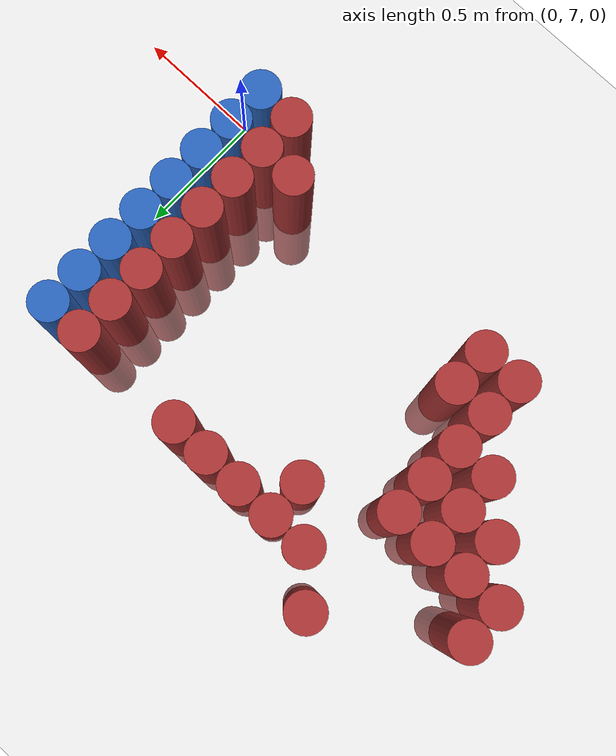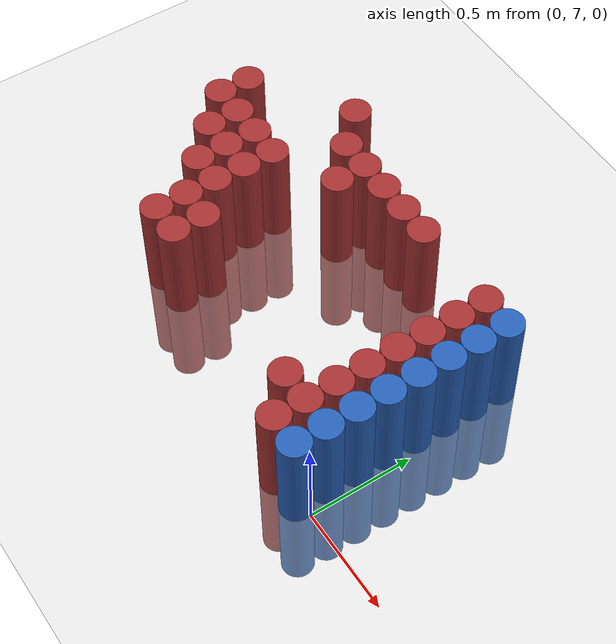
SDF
<sdf version="1.6">
 <world name="default">
  <model name="ground_plane">
   <static>1</static>
   <link name="link">
    <collision name="collision">
     <geometry><plane><normal>0 0 1</normal><size>100 100</size></plane></geometry>
     <surface><friction><ode><mu>100</mu><mu2>50</mu2></ode></friction></surface>
    </collision>
    <visual name="visual">
     <cast_shadows>0</cast_shadows>
     <geometry><plane><normal>0 0 1</normal><size>100 100</size></plane></geometry>
     <material>
      <script><uri>file://media/materials/scripts/gazebo.material</uri><name>Gazebo/Grey</name></script>
     </material>
    </visual>
   </link>
  </model>
  <model name="unit_cylinder_206">
   <static>1</static>
   <pose>-1.875000 7.725000 0.000000 0.000000 0.000000 0.000000</pose>
   <link name="link">
    <inertial>
     <mass>1</mass>
     <inertia><ixx>0.145833</ixx><ixy>0</ixy><ixz>0</ixz><iyy>0.145833</iyy><iyz>0</iyz><izz>0.125</izz></inertia>
    </inertial>
    <collision name="collision">
     <geometry><cylinder><radius>0.075000</radius><length>1</length></cylinder></geometry>
    </collision>
    <visual name="visual">
     <geometry><cylinder><radius>0.075000</radius><length>1</length></cylinder></geometry>
     <material>
      <ambient>0.648000 0.192000 0.192000 1</ambient>
      <diffuse>0.648000 0.192000 0.192000 1</diffuse>
     </material>
     <material>
      <script><name>Gazebo/Grey</name><uri>file://media/materials/scripts/gazebo.material</uri></script>
     </material>
    </visual>
    <sensor name="sensor_contact" type="contact"><contact><collision>collision</collision></contact></sensor>
   </link>
   <plugin filename="gz-sim-touchplugin-system" name="gz::sim::systems::TouchPlugin">
    <target>robot</target>
    <namespace>robot</namespace>
    <time>0.001</time>
    <enabled>true</enabled>
   </plugin>
  </model>
  <model name="unit_cylinder_207">
   <static>1</static>
   <pose>-1.875000 7.875000 0.000000 0.000000 0.000000 0.000000</pose>
   <link name="link">
    <inertial>
     <mass>1</mass>
     <inertia><ixx>0.145833</ixx><ixy>0</ixy><ixz>0</ixz><iyy>0.145833</iyy><iyz>0</iyz><izz>0.125</izz></inertia>
    </inertial>
    <collision name="collision">
     <geometry><cylinder><radius>0.075000</radius><length>1</length></cylinder></geometry>
    </collision>
    <visual name="visual">
     <geometry><cylinder><radius>0.075000</radius><length>1</length></cylinder></geometry>
     <material>
      <ambient>0.648000 0.192000 0.192000 1</ambient>
      <diffuse>0.648000 0.192000 0.192000 1</diffuse>
     </material>
     <material>
      <script><name>Gazebo/Grey</name><uri>file://media/materials/scripts/gazebo.material</uri></script>
     </material>
    </visual>
    <sensor name="sensor_contact" type="contact"><contact><collision>collision</collision></contact></sensor>
   </link>
   <plugin filename="gz-sim-touchplugin-system" name="gz::sim::systems::TouchPlugin">
    <target>robot</target>
    <namespace>robot</namespace>
    <time>0.001</time>
    <enabled>true</enabled>
   </plugin>
  </model>
  <model name="unit_cylinder_214">
   <static>1</static>
   <pose>-1.725000 7.575000 0.000000 0.000000 0.000000 0.000000</pose>
   <link name="link">
    <inertial>
     <mass>1</mass>
     <inertia><ixx>0.145833</ixx><ixy>0</ixy><ixz>0</ixz><iyy>0.145833</iyy><iyz>0</iyz><izz>0.125</izz></inertia>
    </inertial>
    <collision name="collision">
     <geometry><cylinder><radius>0.075000</radius><length>1</length></cylinder></geometry>
    </collision>
    <visual name="visual">
     <geometry><cylinder><radius>0.075000</radius><length>1</length></cylinder></geometry>
     <material>
      <ambient>0.648000 0.192000 0.192000 1</ambient>
      <diffuse>0.648000 0.192000 0.192000 1</diffuse>
     </material>
     <material>
      <script><name>Gazebo/Grey</name><uri>file://media/materials/scripts/gazebo.material</uri></script>
     </material>
    </visual>
    <sensor name="sensor_contact" type="contact"><contact><collision>collision</collision></contact></sensor>
   </link>
   <plugin filename="gz-sim-touchplugin-system" name="gz::sim::systems::TouchPlugin">
    <target>robot</target>
    <namespace>robot</namespace>
    <time>0.001</time>
    <enabled>true</enabled>
   </plugin>
  </model>
  <model name="unit_cylinder_215">
   <static>1</static>
   <pose>-1.725000 7.725000 0.000000 0.000000 0.000000 0.000000</pose>
   <link name="link">
    <inertial>
     <mass>1</mass>
     <inertia><ixx>0.145833</ixx><ixy>0</ixy><ixz>0</ixz><iyy>0.145833</iyy><iyz>0</iyz><izz>0.125</izz></inertia>
    </inertial>
    <collision name="collision">
     <geometry><cylinder><radius>0.075000</radius><length>1</length></cylinder></geometry>
    </collision>
    <visual name="visual">
     <geometry><cylinder><radius>0.075000</radius><length>1</length></cylinder></geometry>
     <material>
      <ambient>0.648000 0.192000 0.192000 1</ambient>
      <diffuse>0.648000 0.192000 0.192000 1</diffuse>
     </material>
     <material>
      <script><name>Gazebo/Grey</name><uri>file://media/materials/scripts/gazebo.material</uri></script>
     </material>
    </visual>
    <sensor name="sensor_contact" type="contact"><contact><collision>collision</collision></contact></sensor>
   </link>
   <plugin filename="gz-sim-touchplugin-system" name="gz::sim::systems::TouchPlugin">
    <target>robot</target>
    <namespace>robot</namespace>
    <time>0.001</time>
    <enabled>true</enabled>
   </plugin>
  </model>
  <model name="unit_cylinder_222">
   <static>1</static>
   <pose>-1.575000 7.425000 0.000000 0.000000 0.000000 0.000000</pose>
   <link name="link">
    <inertial>
     <mass>1</mass>
     <inertia><ixx>0.145833</ixx><ixy>0</ixy><ixz>0</ixz><iyy>0.145833</iyy><iyz>0</iyz><izz>0.125</izz></inertia>
    </inertial>
    <collision name="collision">
     <geometry><cylinder><radius>0.075000</radius><length>1</length></cylinder></geometry>
    </collision>
    <visual name="visual">
     <geometry><cylinder><radius>0.075000</radius><length>1</length></cylinder></geometry>
     <material>
      <ambient>0.648000 0.192000 0.192000 1</ambient>
      <diffuse>0.648000 0.192000 0.192000 1</diffuse>
     </material>
     <material>
      <script><name>Gazebo/Grey</name><uri>file://media/materials/scripts/gazebo.material</uri></script>
     </material>
    </visual>
    <sensor name="sensor_contact" type="contact"><contact><collision>collision</collision></contact></sensor>
   </link>
   <plugin filename="gz-sim-touchplugin-system" name="gz::sim::systems::TouchPlugin">
    <target>robot</target>
    <namespace>robot</namespace>
    <time>0.001</time>
    <enabled>true</enabled>
   </plugin>
  </model>
  <model name="unit_cylinder_223">
   <static>1</static>
   <pose>-1.575000 7.575000 0.000000 0.000000 0.000000 0.000000</pose>
   <link name="link">
    <inertial>
     <mass>1</mass>
     <inertia><ixx>0.145833</ixx><ixy>0</ixy><ixz>0</ixz><iyy>0.145833</iyy><iyz>0</iyz><izz>0.125</izz></inertia>
    </inertial>
    <collision name="collision">
     <geometry><cylinder><radius>0.075000</radius><length>1</length></cylinder></geometry>
    </collision>
    <visual name="visual">
     <geometry><cylinder><radius>0.075000</radius><length>1</length></cylinder></geometry>
     <material>
      <ambient>0.648000 0.192000 0.192000 1</ambient>
      <diffuse>0.648000 0.192000 0.192000 1</diffuse>
     </material>
     <material>
      <script><name>Gazebo/Grey</name><uri>file://media/materials/scripts/gazebo.material</uri></script>
     </material>
    </visual>
    <sensor name="sensor_contact" type="contact"><contact><collision>collision</collision></contact></sensor>
   </link>
   <plugin filename="gz-sim-touchplugin-system" name="gz::sim::systems::TouchPlugin">
    <target>robot</target>
    <namespace>robot</namespace>
    <time>0.001</time>
    <enabled>true</enabled>
   </plugin>
  </model>
  <model name="unit_cylinder_224">
   <static>1</static>
   <pose>-1.575000 7.725000 0.000000 0.000000 0.000000 0.000000</pose>
   <link name="link">
    <inertial>
     <mass>1</mass>
     <inertia><ixx>0.145833</ixx><ixy>0</ixy><ixz>0</ixz><iyy>0.145833</iyy><iyz>0</iyz><izz>0.125</izz></inertia>
    </inertial>
    <collision name="collision">
     <geometry><cylinder><radius>0.075000</radius><length>1</length></cylinder></geometry>
    </collision>
    <visual name="visual">
     <geometry><cylinder><radius>0.075000</radius><length>1</length></cylinder></geometry>
     <material>
      <ambient>0.648000 0.192000 0.192000 1</ambient>
      <diffuse>0.648000 0.192000 0.192000 1</diffuse>
     </material>
     <material>
      <script><name>Gazebo/Grey</name><uri>file://media/materials/scripts/gazebo.material</uri></script>
     </material>
    </visual>
    <sensor name="sensor_contact" type="contact"><contact><collision>collision</collision></contact></sensor>
   </link>
   <plugin filename="gz-sim-touchplugin-system" name="gz::sim::systems::TouchPlugin">
    <target>robot</target>
    <namespace>robot</namespace>
    <time>0.001</time>
    <enabled>true</enabled>
   </plugin>
  </model>
  <model name="unit_cylinder_232">
   <static>1</static>
   <pose>-1.425000 7.125000 0.000000 0.000000 0.000000 0.000000</pose>
   <link name="link">
    <inertial>
     <mass>1</mass>
     <inertia><ixx>0.145833</ixx><ixy>0</ixy><ixz>0</ixz><iyy>0.145833</iyy><iyz>0</iyz><izz>0.125</izz></inertia>
    </inertial>
    <collision name="collision">
     <geometry><cylinder><radius>0.075000</radius><length>1</length></cylinder></geometry>
    </collision>
    <visual name="visual">
     <geometry><cylinder><radius>0.075000</radius><length>1</length></cylinder></geometry>
     <material>
      <ambient>0.648000 0.192000 0.192000 1</ambient>
      <diffuse>0.648000 0.192000 0.192000 1</diffuse>
     </material>
     <material>
      <script><name>Gazebo/Grey</name><uri>file://media/materials/scripts/gazebo.material</uri></script>
     </material>
    </visual>
    <sensor name="sensor_contact" type="contact"><contact><collision>collision</collision></contact></sensor>
   </link>
   <plugin filename="gz-sim-touchplugin-system" name="gz::sim::systems::TouchPlugin">
    <target>robot</target>
    <namespace>robot</namespace>
    <time>0.001</time>
    <enabled>true</enabled>
   </plugin>
  </model>
  <model name="unit_cylinder_233">
   <static>1</static>
   <pose>-1.425000 7.275000 0.000000 0.000000 0.000000 0.000000</pose>
   <link name="link">
    <inertial>
     <mass>1</mass>
     <inertia><ixx>0.145833</ixx><ixy>0</ixy><ixz>0</ixz><iyy>0.145833</iyy><iyz>0</iyz><izz>0.125</izz></inertia>
    </inertial>
    <collision name="collision">
     <geometry><cylinder><radius>0.075000</radius><length>1</length></cylinder></geometry>
    </collision>
    <visual name="visual">
     <geometry><cylinder><radius>0.075000</radius><length>1</length></cylinder></geometry>
     <material>
      <ambient>0.648000 0.192000 0.192000 1</ambient>
      <diffuse>0.648000 0.192000 0.192000 1</diffuse>
     </material>
     <material>
      <script><name>Gazebo/Grey</name><uri>file://media/materials/scripts/gazebo.material</uri></script>
     </material>
    </visual>
    <sensor name="sensor_contact" type="contact"><contact><collision>collision</collision></contact></sensor>
   </link>
   <plugin filename="gz-sim-touchplugin-system" name="gz::sim::systems::TouchPlugin">
    <target>robot</target>
    <namespace>robot</namespace>
    <time>0.001</time>
    <enabled>true</enabled>
   </plugin>
  </model>
  <model name="unit_cylinder_234">
   <static>1</static>
   <pose>-1.425000 7.425000 0.000000 0.000000 0.000000 0.000000</pose>
   <link name="link">
    <inertial>
     <mass>1</mass>
     <inertia><ixx>0.145833</ixx><ixy>0</ixy><ixz>0</ixz><iyy>0.145833</iyy><iyz>0</iyz><izz>0.125</izz></inertia>
    </inertial>
    <collision name="collision">
     <geometry><cylinder><radius>0.075000</radius><length>1</length></cylinder></geometry>
    </collision>
    <visual name="visual">
     <geometry><cylinder><radius>0.075000</radius><length>1</length></cylinder></geometry>
     <material>
      <ambient>0.648000 0.192000 0.192000 1</ambient>
      <diffuse>0.648000 0.192000 0.192000 1</diffuse>
     </material>
     <material>
      <script><name>Gazebo/Grey</name><uri>file://media/materials/scripts/gazebo.material</uri></script>
     </material>
    </visual>
    <sensor name="sensor_contact" type="contact"><contact><collision>collision</collision></contact></sensor>
   </link>
   <plugin filename="gz-sim-touchplugin-system" name="gz::sim::systems::TouchPlugin">
    <target>robot</target>
    <namespace>robot</namespace>
    <time>0.001</time>
    <enabled>true</enabled>
   </plugin>
  </model>
  <model name="unit_cylinder_235">
   <static>1</static>
   <pose>-1.425000 7.575000 0.000000 0.000000 0.000000 0.000000</pose>
   <link name="link">
    <inertial>
     <mass>1</mass>
     <inertia><ixx>0.145833</ixx><ixy>0</ixy><ixz>0</ixz><iyy>0.145833</iyy><iyz>0</iyz><izz>0.125</izz></inertia>
    </inertial>
    <collision name="collision">
     <geometry><cylinder><radius>0.075000</radius><length>1</length></cylinder></geometry>
    </collision>
    <visual name="visual">
     <geometry><cylinder><radius>0.075000</radius><length>1</length></cylinder></geometry>
     <material>
      <ambient>0.648000 0.192000 0.192000 1</ambient>
      <diffuse>0.648000 0.192000 0.192000 1</diffuse>
     </material>
     <material>
      <script><name>Gazebo/Grey</name><uri>file://media/materials/scripts/gazebo.material</uri></script>
     </material>
    </visual>
    <sensor name="sensor_contact" type="contact"><contact><collision>collision</collision></contact></sensor>
   </link>
   <plugin filename="gz-sim-touchplugin-system" name="gz::sim::systems::TouchPlugin">
    <target>robot</target>
    <namespace>robot</namespace>
    <time>0.001</time>
    <enabled>true</enabled>
   </plugin>
  </model>
  <model name="unit_cylinder_236">
   <static>1</static>
   <pose>-1.425000 7.725000 0.000000 0.000000 0.000000 0.000000</pose>
   <link name="link">
    <inertial>
     <mass>1</mass>
     <inertia><ixx>0.145833</ixx><ixy>0</ixy><ixz>0</ixz><iyy>0.145833</iyy><iyz>0</iyz><izz>0.125</izz></inertia>
    </inertial>
    <collision name="collision">
     <geometry><cylinder><radius>0.075000</radius><length>1</length></cylinder></geometry>
    </collision>
    <visual name="visual">
     <geometry><cylinder><radius>0.075000</radius><length>1</length></cylinder></geometry>
     <material>
      <ambient>0.648000 0.192000 0.192000 1</ambient>
      <diffuse>0.648000 0.192000 0.192000 1</diffuse>
     </material>
     <material>
      <script><name>Gazebo/Grey</name><uri>file://media/materials/scripts/gazebo.material</uri></script>
     </material>
    </visual>
    <sensor name="sensor_contact" type="contact"><contact><collision>collision</collision></contact></sensor>
   </link>
   <plugin filename="gz-sim-touchplugin-system" name="gz::sim::systems::TouchPlugin">
    <target>robot</target>
    <namespace>robot</namespace>
    <time>0.001</time>
    <enabled>true</enabled>
   </plugin>
  </model>
  <model name="unit_cylinder_237">
   <static>1</static>
   <pose>-1.425000 8.175000 0.000000 0.000000 0.000000 0.000000</pose>
   <link name="link">
    <inertial>
     <mass>1</mass>
     <inertia><ixx>0.145833</ixx><ixy>0</ixy><ixz>0</ixz><iyy>0.145833</iyy><iyz>0</iyz><izz>0.125</izz></inertia>
    </inertial>
    <collision name="collision">
     <geometry><cylinder><radius>0.075000</radius><length>1</length></cylinder></geometry>
    </collision>
    <visual name="visual">
     <geometry><cylinder><radius>0.075000</radius><length>1</length></cylinder></geometry>
     <material>
      <ambient>0.648000 0.192000 0.192000 1</ambient>
      <diffuse>0.648000 0.192000 0.192000 1</diffuse>
     </material>
     <material>
      <script><name>Gazebo/Grey</name><uri>file://media/materials/scripts/gazebo.material</uri></script>
     </material>
    </visual>
    <sensor name="sensor_contact" type="contact"><contact><collision>collision</collision></contact></sensor>
   </link>
   <plugin filename="gz-sim-touchplugin-system" name="gz::sim::systems::TouchPlugin">
    <target>robot</target>
    <namespace>robot</namespace>
    <time>0.001</time>
    <enabled>true</enabled>
   </plugin>
  </model>
  <model name="unit_cylinder_251">
   <static>1</static>
   <pose>-1.275000 7.125000 0.000000 0.000000 0.000000 0.000000</pose>
   <link name="link">
    <inertial>
     <mass>1</mass>
     <inertia><ixx>0.145833</ixx><ixy>0</ixy><ixz>0</ixz><iyy>0.145833</iyy><iyz>0</iyz><izz>0.125</izz></inertia>
    </inertial>
    <collision name="collision">
     <geometry><cylinder><radius>0.075000</radius><length>1</length></cylinder></geometry>
    </collision>
    <visual name="visual">
     <geometry><cylinder><radius>0.075000</radius><length>1</length></cylinder></geometry>
     <material>
      <ambient>0.648000 0.192000 0.192000 1</ambient>
      <diffuse>0.648000 0.192000 0.192000 1</diffuse>
     </material>
     <material>
      <script><name>Gazebo/Grey</name><uri>file://media/materials/scripts/gazebo.material</uri></script>
     </material>
    </visual>
    <sensor name="sensor_contact" type="contact"><contact><collision>collision</collision></contact></sensor>
   </link>
   <plugin filename="gz-sim-touchplugin-system" name="gz::sim::systems::TouchPlugin">
    <target>robot</target>
    <namespace>robot</namespace>
    <time>0.001</time>
    <enabled>true</enabled>
   </plugin>
  </model>
  <model name="unit_cylinder_252">
   <static>1</static>
   <pose>-1.275000 7.275000 0.000000 0.000000 0.000000 0.000000</pose>
   <link name="link">
    <inertial>
     <mass>1</mass>
     <inertia><ixx>0.145833</ixx><ixy>0</ixy><ixz>0</ixz><iyy>0.145833</iyy><iyz>0</iyz><izz>0.125</izz></inertia>
    </inertial>
    <collision name="collision">
     <geometry><cylinder><radius>0.075000</radius><length>1</length></cylinder></geometry>
    </collision>
    <visual name="visual">
     <geometry><cylinder><radius>0.075000</radius><length>1</length></cylinder></geometry>
     <material>
      <ambient>0.648000 0.192000 0.192000 1</ambient>
      <diffuse>0.648000 0.192000 0.192000 1</diffuse>
     </material>
     <material>
      <script><name>Gazebo/Grey</name><uri>file://media/materials/scripts/gazebo.material</uri></script>
     </material>
    </visual>
    <sensor name="sensor_contact" type="contact"><contact><collision>collision</collision></contact></sensor>
   </link>
   <plugin filename="gz-sim-touchplugin-system" name="gz::sim::systems::TouchPlugin">
    <target>robot</target>
    <namespace>robot</namespace>
    <time>0.001</time>
    <enabled>true</enabled>
   </plugin>
  </model>
  <model name="unit_cylinder_253">
   <static>1</static>
   <pose>-1.275000 8.025000 0.000000 0.000000 0.000000 0.000000</pose>
   <link name="link">
    <inertial>
     <mass>1</mass>
     <inertia><ixx>0.145833</ixx><ixy>0</ixy><ixz>0</ixz><iyy>0.145833</iyy><iyz>0</iyz><izz>0.125</izz></inertia>
    </inertial>
    <collision name="collision">
     <geometry><cylinder><radius>0.075000</radius><length>1</length></cylinder></geometry>
    </collision>
    <visual name="visual">
     <geometry><cylinder><radius>0.075000</radius><length>1</length></cylinder></geometry>
     <material>
      <ambient>0.648000 0.192000 0.192000 1</ambient>
      <diffuse>0.648000 0.192000 0.192000 1</diffuse>
     </material>
     <material>
      <script><name>Gazebo/Grey</name><uri>file://media/materials/scripts/gazebo.material</uri></script>
     </material>
    </visual>
    <sensor name="sensor_contact" type="contact"><contact><collision>collision</collision></contact></sensor>
   </link>
   <plugin filename="gz-sim-touchplugin-system" name="gz::sim::systems::TouchPlugin">
    <target>robot</target>
    <namespace>robot</namespace>
    <time>0.001</time>
    <enabled>true</enabled>
   </plugin>
  </model>
  <model name="unit_cylinder_264">
   <static>1</static>
   <pose>-1.125000 7.875000 0.000000 0.000000 0.000000 0.000000</pose>
   <link name="link">
    <inertial>
     <mass>1</mass>
     <inertia><ixx>0.145833</ixx><ixy>0</ixy><ixz>0</ixz><iyy>0.145833</iyy><iyz>0</iyz><izz>0.125</izz></inertia>
    </inertial>
    <collision name="collision">
     <geometry><cylinder><radius>0.075000</radius><length>1</length></cylinder></geometry>
    </collision>
    <visual name="visual">
     <geometry><cylinder><radius>0.075000</radius><length>1</length></cylinder></geometry>
     <material>
      <ambient>0.648000 0.192000 0.192000 1</ambient>
      <diffuse>0.648000 0.192000 0.192000 1</diffuse>
     </material>
     <material>
      <script><name>Gazebo/Grey</name><uri>file://media/materials/scripts/gazebo.material</uri></script>
     </material>
    </visual>
    <sensor name="sensor_contact" type="contact"><contact><collision>collision</collision></contact></sensor>
   </link>
   <plugin filename="gz-sim-touchplugin-system" name="gz::sim::systems::TouchPlugin">
    <target>robot</target>
    <namespace>robot</namespace>
    <time>0.001</time>
    <enabled>true</enabled>
   </plugin>
  </model>
  <model name="unit_cylinder_265">
   <static>1</static>
   <pose>-1.125000 8.025000 0.000000 0.000000 0.000000 0.000000</pose>
   <link name="link">
    <inertial>
     <mass>1</mass>
     <inertia><ixx>0.145833</ixx><ixy>0</ixy><ixz>0</ixz><iyy>0.145833</iyy><iyz>0</iyz><izz>0.125</izz></inertia>
    </inertial>
    <collision name="collision">
     <geometry><cylinder><radius>0.075000</radius><length>1</length></cylinder></geometry>
    </collision>
    <visual name="visual">
     <geometry><cylinder><radius>0.075000</radius><length>1</length></cylinder></geometry>
     <material>
      <ambient>0.648000 0.192000 0.192000 1</ambient>
      <diffuse>0.648000 0.192000 0.192000 1</diffuse>
     </material>
     <material>
      <script><name>Gazebo/Grey</name><uri>file://media/materials/scripts/gazebo.material</uri></script>
     </material>
    </visual>
    <sensor name="sensor_contact" type="contact"><contact><collision>collision</collision></contact></sensor>
   </link>
   <plugin filename="gz-sim-touchplugin-system" name="gz::sim::systems::TouchPlugin">
    <target>robot</target>
    <namespace>robot</namespace>
    <time>0.001</time>
    <enabled>true</enabled>
   </plugin>
  </model>
  <model name="unit_cylinder_268">
   <static>1</static>
   <pose>-0.975000 8.025000 0.000000 0.000000 0.000000 0.000000</pose>
   <link name="link">
    <inertial>
     <mass>1</mass>
     <inertia><ixx>0.145833</ixx><ixy>0</ixy><ixz>0</ixz><iyy>0.145833</iyy><iyz>0</iyz><izz>0.125</izz></inertia>
    </inertial>
    <collision name="collision">
     <geometry><cylinder><radius>0.075000</radius><length>1</length></cylinder></geometry>
    </collision>
    <visual name="visual">
     <geometry><cylinder><radius>0.075000</radius><length>1</length></cylinder></geometry>
     <material>
      <ambient>0.648000 0.192000 0.192000 1</ambient>
      <diffuse>0.648000 0.192000 0.192000 1</diffuse>
     </material>
     <material>
      <script><name>Gazebo/Grey</name><uri>file://media/materials/scripts/gazebo.material</uri></script>
     </material>
    </visual>
    <sensor name="sensor_contact" type="contact"><contact><collision>collision</collision></contact></sensor>
   </link>
   <plugin filename="gz-sim-touchplugin-system" name="gz::sim::systems::TouchPlugin">
    <target>robot</target>
    <namespace>robot</namespace>
    <time>0.001</time>
    <enabled>true</enabled>
   </plugin>
  </model>
  <model name="unit_cylinder_271">
   <static>1</static>
   <pose>-0.825000 8.025000 0.000000 0.000000 0.000000 0.000000</pose>
   <link name="link">
    <inertial>
     <mass>1</mass>
     <inertia><ixx>0.145833</ixx><ixy>0</ixy><ixz>0</ixz><iyy>0.145833</iyy><iyz>0</iyz><izz>0.125</izz></inertia>
    </inertial>
    <collision name="collision">
     <geometry><cylinder><radius>0.075000</radius><length>1</length></cylinder></geometry>
    </collision>
    <visual name="visual">
     <geometry><cylinder><radius>0.075000</radius><length>1</length></cylinder></geometry>
     <material>
      <ambient>0.648000 0.192000 0.192000 1</ambient>
      <diffuse>0.648000 0.192000 0.192000 1</diffuse>
     </material>
     <material>
      <script><name>Gazebo/Grey</name><uri>file://media/materials/scripts/gazebo.material</uri></script>
     </material>
    </visual>
    <sensor name="sensor_contact" type="contact"><contact><collision>collision</collision></contact></sensor>
   </link>
   <plugin filename="gz-sim-touchplugin-system" name="gz::sim::systems::TouchPlugin">
    <target>robot</target>
    <namespace>robot</namespace>
    <time>0.001</time>
    <enabled>true</enabled>
   </plugin>
  </model>
  <model name="unit_cylinder_273">
   <static>1</static>
   <pose>-0.675000 8.025000 0.000000 0.000000 0.000000 0.000000</pose>
   <link name="link">
    <inertial>
     <mass>1</mass>
     <inertia><ixx>0.145833</ixx><ixy>0</ixy><ixz>0</ixz><iyy>0.145833</iyy><iyz>0</iyz><izz>0.125</izz></inertia>
    </inertial>
    <collision name="collision">
     <geometry><cylinder><radius>0.075000</radius><length>1</length></cylinder></geometry>
    </collision>
    <visual name="visual">
     <geometry><cylinder><radius>0.075000</radius><length>1</length></cylinder></geometry>
     <material>
      <ambient>0.648000 0.192000 0.192000 1</ambient>
      <diffuse>0.648000 0.192000 0.192000 1</diffuse>
     </material>
     <material>
      <script><name>Gazebo/Grey</name><uri>file://media/materials/scripts/gazebo.material</uri></script>
     </material>
    </visual>
    <sensor name="sensor_contact" type="contact"><contact><collision>collision</collision></contact></sensor>
   </link>
   <plugin filename="gz-sim-touchplugin-system" name="gz::sim::systems::TouchPlugin">
    <target>robot</target>
    <namespace>robot</namespace>
    <time>0.001</time>
    <enabled>true</enabled>
   </plugin>
  </model>
  <model name="unit_cylinder_288">
   <static>1</static>
   <pose>-0.375000 7.125000 0.000000 0.000000 0.000000 0.000000</pose>
   <link name="link">
    <inertial>
     <mass>1</mass>
     <inertia><ixx>0.145833</ixx><ixy>0</ixy><ixz>0</ixz><iyy>0.145833</iyy><iyz>0</iyz><izz>0.125</izz></inertia>
    </inertial>
    <collision name="collision">
     <geometry><cylinder><radius>0.075000</radius><length>1</length></cylinder></geometry>
    </collision>
    <visual name="visual">
     <geometry><cylinder><radius>0.075000</radius><length>1</length></cylinder></geometry>
     <material>
      <ambient>0.648000 0.192000 0.192000 1</ambient>
      <diffuse>0.648000 0.192000 0.192000 1</diffuse>
     </material>
     <material>
      <script><name>Gazebo/Grey</name><uri>file://media/materials/scripts/gazebo.material</uri></script>
     </material>
    </visual>
    <sensor name="sensor_contact" type="contact"><contact><collision>collision</collision></contact></sensor>
   </link>
   <plugin filename="gz-sim-touchplugin-system" name="gz::sim::systems::TouchPlugin">
    <target>robot</target>
    <namespace>robot</namespace>
    <time>0.001</time>
    <enabled>true</enabled>
   </plugin>
  </model>
  <model name="unit_cylinder_300">
   <static>1</static>
   <pose>-0.225000 6.975000 0.000000 0.000000 0.000000 0.000000</pose>
   <link name="link">
    <inertial>
     <mass>1</mass>
     <inertia><ixx>0.145833</ixx><ixy>0</ixy><ixz>0</ixz><iyy>0.145833</iyy><iyz>0</iyz><izz>0.125</izz></inertia>
    </inertial>
    <collision name="collision">
     <geometry><cylinder><radius>0.075000</radius><length>1</length></cylinder></geometry>
    </collision>
    <visual name="visual">
     <geometry><cylinder><radius>0.075000</radius><length>1</length></cylinder></geometry>
     <material>
      <ambient>0.648000 0.192000 0.192000 1</ambient>
      <diffuse>0.648000 0.192000 0.192000 1</diffuse>
     </material>
     <material>
      <script><name>Gazebo/Grey</name><uri>file://media/materials/scripts/gazebo.material</uri></script>
     </material>
    </visual>
    <sensor name="sensor_contact" type="contact"><contact><collision>collision</collision></contact></sensor>
   </link>
   <plugin filename="gz-sim-touchplugin-system" name="gz::sim::systems::TouchPlugin">
    <target>robot</target>
    <namespace>robot</namespace>
    <time>0.001</time>
    <enabled>true</enabled>
   </plugin>
  </model>
  <model name="unit_cylinder_301">
   <static>1</static>
   <pose>-0.225000 7.125000 0.000000 0.000000 0.000000 0.000000</pose>
   <link name="link">
    <inertial>
     <mass>1</mass>
     <inertia><ixx>0.145833</ixx><ixy>0</ixy><ixz>0</ixz><iyy>0.145833</iyy><iyz>0</iyz><izz>0.125</izz></inertia>
    </inertial>
    <collision name="collision">
     <geometry><cylinder><radius>0.075000</radius><length>1</length></cylinder></geometry>
    </collision>
    <visual name="visual">
     <geometry><cylinder><radius>0.075000</radius><length>1</length></cylinder></geometry>
     <material>
      <ambient>0.648000 0.192000 0.192000 1</ambient>
      <diffuse>0.648000 0.192000 0.192000 1</diffuse>
     </material>
     <material>
      <script><name>Gazebo/Grey</name><uri>file://media/materials/scripts/gazebo.material</uri></script>
     </material>
    </visual>
    <sensor name="sensor_contact" type="contact"><contact><collision>collision</collision></contact></sensor>
   </link>
   <plugin filename="gz-sim-touchplugin-system" name="gz::sim::systems::TouchPlugin">
    <target>robot</target>
    <namespace>robot</namespace>
    <time>0.001</time>
    <enabled>true</enabled>
   </plugin>
  </model>
  <model name="unit_cylinder_302">
   <static>1</static>
   <pose>-0.225000 7.275000 0.000000 0.000000 0.000000 0.000000</pose>
   <link name="link">
    <inertial>
     <mass>1</mass>
     <inertia><ixx>0.145833</ixx><ixy>0</ixy><ixz>0</ixz><iyy>0.145833</iyy><iyz>0</iyz><izz>0.125</izz></inertia>
    </inertial>
    <collision name="collision">
     <geometry><cylinder><radius>0.075000</radius><length>1</length></cylinder></geometry>
    </collision>
    <visual name="visual">
     <geometry><cylinder><radius>0.075000</radius><length>1</length></cylinder></geometry>
     <material>
      <ambient>0.648000 0.192000 0.192000 1</ambient>
      <diffuse>0.648000 0.192000 0.192000 1</diffuse>
     </material>
     <material>
      <script><name>Gazebo/Grey</name><uri>file://media/materials/scripts/gazebo.material</uri></script>
     </material>
    </visual>
    <sensor name="sensor_contact" type="contact"><contact><collision>collision</collision></contact></sensor>
   </link>
   <plugin filename="gz-sim-touchplugin-system" name="gz::sim::systems::TouchPlugin">
    <target>robot</target>
    <namespace>robot</namespace>
    <time>0.001</time>
    <enabled>true</enabled>
   </plugin>
  </model>
  <model name="unit_cylinder_303">
   <static>1</static>
   <pose>-0.225000 7.425000 0.000000 0.000000 0.000000 0.000000</pose>
   <link name="link">
    <inertial>
     <mass>1</mass>
     <inertia><ixx>0.145833</ixx><ixy>0</ixy><ixz>0</ixz><iyy>0.145833</iyy><iyz>0</iyz><izz>0.125</izz></inertia>
    </inertial>
    <collision name="collision">
     <geometry><cylinder><radius>0.075000</radius><length>1</length></cylinder></geometry>
    </collision>
    <visual name="visual">
     <geometry><cylinder><radius>0.075000</radius><length>1</length></cylinder></geometry>
     <material>
      <ambient>0.648000 0.192000 0.192000 1</ambient>
      <diffuse>0.648000 0.192000 0.192000 1</diffuse>
     </material>
     <material>
      <script><name>Gazebo/Grey</name><uri>file://media/materials/scripts/gazebo.material</uri></script>
     </material>
    </visual>
    <sensor name="sensor_contact" type="contact"><contact><collision>collision</collision></contact></sensor>
   </link>
   <plugin filename="gz-sim-touchplugin-system" name="gz::sim::systems::TouchPlugin">
    <target>robot</target>
    <namespace>robot</namespace>
    <time>0.001</time>
    <enabled>true</enabled>
   </plugin>
  </model>
  <model name="unit_cylinder_304">
   <static>1</static>
   <pose>-0.225000 7.575000 0.000000 0.000000 0.000000 0.000000</pose>
   <link name="link">
    <inertial>
     <mass>1</mass>
     <inertia><ixx>0.145833</ixx><ixy>0</ixy><ixz>0</ixz><iyy>0.145833</iyy><iyz>0</iyz><izz>0.125</izz></inertia>
    </inertial>
    <collision name="collision">
     <geometry><cylinder><radius>0.075000</radius><length>1</length></cylinder></geometry>
    </collision>
    <visual name="visual">
     <geometry><cylinder><radius>0.075000</radius><length>1</length></cylinder></geometry>
     <material>
      <ambient>0.648000 0.192000 0.192000 1</ambient>
      <diffuse>0.648000 0.192000 0.192000 1</diffuse>
     </material>
     <material>
      <script><name>Gazebo/Grey</name><uri>file://media/materials/scripts/gazebo.material</uri></script>
     </material>
    </visual>
    <sensor name="sensor_contact" type="contact"><contact><collision>collision</collision></contact></sensor>
   </link>
   <plugin filename="gz-sim-touchplugin-system" name="gz::sim::systems::TouchPlugin">
    <target>robot</target>
    <namespace>robot</namespace>
    <time>0.001</time>
    <enabled>true</enabled>
   </plugin>
  </model>
  <model name="unit_cylinder_305">
   <static>1</static>
   <pose>-0.225000 7.725000 0.000000 0.000000 0.000000 0.000000</pose>
   <link name="link">
    <inertial>
     <mass>1</mass>
     <inertia><ixx>0.145833</ixx><ixy>0</ixy><ixz>0</ixz><iyy>0.145833</iyy><iyz>0</iyz><izz>0.125</izz></inertia>
    </inertial>
    <collision name="collision">
     <geometry><cylinder><radius>0.075000</radius><length>1</length></cylinder></geometry>
    </collision>
    <visual name="visual">
     <geometry><cylinder><radius>0.075000</radius><length>1</length></cylinder></geometry>
     <material>
      <ambient>0.648000 0.192000 0.192000 1</ambient>
      <diffuse>0.648000 0.192000 0.192000 1</diffuse>
     </material>
     <material>
      <script><name>Gazebo/Grey</name><uri>file://media/materials/scripts/gazebo.material</uri></script>
     </material>
    </visual>
    <sensor name="sensor_contact" type="contact"><contact><collision>collision</collision></contact></sensor>
   </link>
   <plugin filename="gz-sim-touchplugin-system" name="gz::sim::systems::TouchPlugin">
    <target>robot</target>
    <namespace>robot</namespace>
    <time>0.001</time>
    <enabled>true</enabled>
   </plugin>
  </model>
  <model name="unit_cylinder_306">
   <static>1</static>
   <pose>-0.225000 7.875000 0.000000 0.000000 0.000000 0.000000</pose>
   <link name="link">
    <inertial>
     <mass>1</mass>
     <inertia><ixx>0.145833</ixx><ixy>0</ixy><ixz>0</ixz><iyy>0.145833</iyy><iyz>0</iyz><izz>0.125</izz></inertia>
    </inertial>
    <collision name="collision">
     <geometry><cylinder><radius>0.075000</radius><length>1</length></cylinder></geometry>
    </collision>
    <visual name="visual">
     <geometry><cylinder><radius>0.075000</radius><length>1</length></cylinder></geometry>
     <material>
      <ambient>0.648000 0.192000 0.192000 1</ambient>
      <diffuse>0.648000 0.192000 0.192000 1</diffuse>
     </material>
     <material>
      <script><name>Gazebo/Grey</name><uri>file://media/materials/scripts/gazebo.material</uri></script>
     </material>
    </visual>
    <sensor name="sensor_contact" type="contact"><contact><collision>collision</collision></contact></sensor>
   </link>
   <plugin filename="gz-sim-touchplugin-system" name="gz::sim::systems::TouchPlugin">
    <target>robot</target>
    <namespace>robot</namespace>
    <time>0.001</time>
    <enabled>true</enabled>
   </plugin>
  </model>
  <model name="unit_cylinder_307">
   <static>1</static>
   <pose>-0.225000 8.025000 0.000000 0.000000 0.000000 0.000000</pose>
   <link name="link">
    <inertial>
     <mass>1</mass>
     <inertia><ixx>0.145833</ixx><ixy>0</ixy><ixz>0</ixz><iyy>0.145833</iyy><iyz>0</iyz><izz>0.125</izz></inertia>
    </inertial>
    <collision name="collision">
     <geometry><cylinder><radius>0.075000</radius><length>1</length></cylinder></geometry>
    </collision>
    <visual name="visual">
     <geometry><cylinder><radius>0.075000</radius><length>1</length></cylinder></geometry>
     <material>
      <ambient>0.648000 0.192000 0.192000 1</ambient>
      <diffuse>0.648000 0.192000 0.192000 1</diffuse>
     </material>
     <material>
      <script><name>Gazebo/Grey</name><uri>file://media/materials/scripts/gazebo.material</uri></script>
     </material>
    </visual>
    <sensor name="sensor_contact" type="contact"><contact><collision>collision</collision></contact></sensor>
   </link>
   <plugin filename="gz-sim-touchplugin-system" name="gz::sim::systems::TouchPlugin">
    <target>robot</target>
    <namespace>robot</namespace>
    <time>0.001</time>
    <enabled>true</enabled>
   </plugin>
  </model>
  <model name="unit_cylinder_327">
   <static>1</static>
   <pose>-0.075000 6.975000 0.000000 0.000000 0.000000 0.000000</pose>
   <link name="link">
    <inertial>
     <mass>1</mass>
     <inertia><ixx>0.145833</ixx><ixy>0</ixy><ixz>0</ixz><iyy>0.145833</iyy><iyz>0</iyz><izz>0.125</izz></inertia>
    </inertial>
    <collision name="collision">
     <geometry><cylinder><radius>0.075000</radius><length>1</length></cylinder></geometry>
    </collision>
    <visual name="visual">
     <geometry><cylinder><radius>0.075000</radius><length>1</length></cylinder></geometry>
     <material>
      <ambient>0.152000 0.379000 0.720000 1</ambient>
      <diffuse>0.152000 0.379000 0.720000 1</diffuse>
     </material>
     <material>
      <script><name>Gazebo/Grey</name><uri>file://media/materials/scripts/gazebo.material</uri></script>
     </material>
    </visual>
    <sensor name="sensor_contact" type="contact"><contact><collision>collision</collision></contact></sensor>
   </link>
   <plugin filename="gz-sim-touchplugin-system" name="gz::sim::systems::TouchPlugin">
    <target>robot</target>
    <namespace>robot</namespace>
    <time>0.001</time>
    <enabled>true</enabled>
   </plugin>
  </model>
  <model name="unit_cylinder_328">
   <static>1</static>
   <pose>-0.075000 7.125000 0.000000 0.000000 0.000000 0.000000</pose>
   <link name="link">
    <inertial>
     <mass>1</mass>
     <inertia><ixx>0.145833</ixx><ixy>0</ixy><ixz>0</ixz><iyy>0.145833</iyy><iyz>0</iyz><izz>0.125</izz></inertia>
    </inertial>
    <collision name="collision">
     <geometry><cylinder><radius>0.075000</radius><length>1</length></cylinder></geometry>
    </collision>
    <visual name="visual">
     <geometry><cylinder><radius>0.075000</radius><length>1</length></cylinder></geometry>
     <material>
      <ambient>0.152000 0.379000 0.720000 1</ambient>
      <diffuse>0.152000 0.379000 0.720000 1</diffuse>
     </material>
     <material>
      <script><name>Gazebo/Grey</name><uri>file://media/materials/scripts/gazebo.material</uri></script>
     </material>
    </visual>
    <sensor name="sensor_contact" type="contact"><contact><collision>collision</collision></contact></sensor>
   </link>
   <plugin filename="gz-sim-touchplugin-system" name="gz::sim::systems::TouchPlugin">
    <target>robot</target>
    <namespace>robot</namespace>
    <time>0.001</time>
    <enabled>true</enabled>
   </plugin>
  </model>
  <model name="unit_cylinder_329">
   <static>1</static>
   <pose>-0.075000 7.275000 0.000000 0.000000 0.000000 0.000000</pose>
   <link name="link">
    <inertial>
     <mass>1</mass>
     <inertia><ixx>0.145833</ixx><ixy>0</ixy><ixz>0</ixz><iyy>0.145833</iyy><iyz>0</iyz><izz>0.125</izz></inertia>
    </inertial>
    <collision name="collision">
     <geometry><cylinder><radius>0.075000</radius><length>1</length></cylinder></geometry>
    </collision>
    <visual name="visual">
     <geometry><cylinder><radius>0.075000</radius><length>1</length></cylinder></geometry>
     <material>
      <ambient>0.152000 0.379000 0.720000 1</ambient>
      <diffuse>0.152000 0.379000 0.720000 1</diffuse>
     </material>
     <material>
      <script><name>Gazebo/Grey</name><uri>file://media/materials/scripts/gazebo.material</uri></script>
     </material>
    </visual>
    <sensor name="sensor_contact" type="contact"><contact><collision>collision</collision></contact></sensor>
   </link>
   <plugin filename="gz-sim-touchplugin-system" name="gz::sim::systems::TouchPlugin">
    <target>robot</target>
    <namespace>robot</namespace>
    <time>0.001</time>
    <enabled>true</enabled>
   </plugin>
  </model>
  <model name="unit_cylinder_330">
   <static>1</static>
   <pose>-0.075000 7.425000 0.000000 0.000000 0.000000 0.000000</pose>
   <link name="link">
    <inertial>
     <mass>1</mass>
     <inertia><ixx>0.145833</ixx><ixy>0</ixy><ixz>0</ixz><iyy>0.145833</iyy><iyz>0</iyz><izz>0.125</izz></inertia>
    </inertial>
    <collision name="collision">
     <geometry><cylinder><radius>0.075000</radius><length>1</length></cylinder></geometry>
    </collision>
    <visual name="visual">
     <geometry><cylinder><radius>0.075000</radius><length>1</length></cylinder></geometry>
     <material>
      <ambient>0.152000 0.379000 0.720000 1</ambient>
      <diffuse>0.152000 0.379000 0.720000 1</diffuse>
     </material>
     <material>
      <script><name>Gazebo/Grey</name><uri>file://media/materials/scripts/gazebo.material</uri></script>
     </material>
    </visual>
    <sensor name="sensor_contact" type="contact"><contact><collision>collision</collision></contact></sensor>
   </link>
   <plugin filename="gz-sim-touchplugin-system" name="gz::sim::systems::TouchPlugin">
    <target>robot</target>
    <namespace>robot</namespace>
    <time>0.001</time>
    <enabled>true</enabled>
   </plugin>
  </model>
  <model name="unit_cylinder_331">
   <static>1</static>
   <pose>-0.075000 7.575000 0.000000 0.000000 0.000000 0.000000</pose>
   <link name="link">
    <inertial>
     <mass>1</mass>
     <inertia><ixx>0.145833</ixx><ixy>0</ixy><ixz>0</ixz><iyy>0.145833</iyy><iyz>0</iyz><izz>0.125</izz></inertia>
    </inertial>
    <collision name="collision">
     <geometry><cylinder><radius>0.075000</radius><length>1</length></cylinder></geometry>
    </collision>
    <visual name="visual">
     <geometry><cylinder><radius>0.075000</radius><length>1</length></cylinder></geometry>
     <material>
      <ambient>0.152000 0.379000 0.720000 1</ambient>
      <diffuse>0.152000 0.379000 0.720000 1</diffuse>
     </material>
     <material>
      <script><name>Gazebo/Grey</name><uri>file://media/materials/scripts/gazebo.material</uri></script>
     </material>
    </visual>
    <sensor name="sensor_contact" type="contact"><contact><collision>collision</collision></contact></sensor>
   </link>
   <plugin filename="gz-sim-touchplugin-system" name="gz::sim::systems::TouchPlugin">
    <target>robot</target>
    <namespace>robot</namespace>
    <time>0.001</time>
    <enabled>true</enabled>
   </plugin>
  </model>
  <model name="unit_cylinder_332">
   <static>1</static>
   <pose>-0.075000 7.725000 0.000000 0.000000 0.000000 0.000000</pose>
   <link name="link">
    <inertial>
     <mass>1</mass>
     <inertia><ixx>0.145833</ixx><ixy>0</ixy><ixz>0</ixz><iyy>0.145833</iyy><iyz>0</iyz><izz>0.125</izz></inertia>
    </inertial>
    <collision name="collision">
     <geometry><cylinder><radius>0.075000</radius><length>1</length></cylinder></geometry>
    </collision>
    <visual name="visual">
     <geometry><cylinder><radius>0.075000</radius><length>1</length></cylinder></geometry>
     <material>
      <ambient>0.152000 0.379000 0.720000 1</ambient>
      <diffuse>0.152000 0.379000 0.720000 1</diffuse>
     </material>
     <material>
      <script><name>Gazebo/Grey</name><uri>file://media/materials/scripts/gazebo.material</uri></script>
     </material>
    </visual>
    <sensor name="sensor_contact" type="contact"><contact><collision>collision</collision></contact></sensor>
   </link>
   <plugin filename="gz-sim-touchplugin-system" name="gz::sim::systems::TouchPlugin">
    <target>robot</target>
    <namespace>robot</namespace>
    <time>0.001</time>
    <enabled>true</enabled>
   </plugin>
  </model>
  <model name="unit_cylinder_333">
   <static>1</static>
   <pose>-0.075000 7.875000 0.000000 0.000000 0.000000 0.000000</pose>
   <link name="link">
    <inertial>
     <mass>1</mass>
     <inertia><ixx>0.145833</ixx><ixy>0</ixy><ixz>0</ixz><iyy>0.145833</iyy><iyz>0</iyz><izz>0.125</izz></inertia>
    </inertial>
    <collision name="collision">
     <geometry><cylinder><radius>0.075000</radius><length>1</length></cylinder></geometry>
    </collision>
    <visual name="visual">
     <geometry><cylinder><radius>0.075000</radius><length>1</length></cylinder></geometry>
     <material>
      <ambient>0.152000 0.379000 0.720000 1</ambient>
      <diffuse>0.152000 0.379000 0.720000 1</diffuse>
     </material>
     <material>
      <script><name>Gazebo/Grey</name><uri>file://media/materials/scripts/gazebo.material</uri></script>
     </material>
    </visual>
    <sensor name="sensor_contact" type="contact"><contact><collision>collision</collision></contact></sensor>
   </link>
   <plugin filename="gz-sim-touchplugin-system" name="gz::sim::systems::TouchPlugin">
    <target>robot</target>
    <namespace>robot</namespace>
    <time>0.001</time>
    <enabled>true</enabled>
   </plugin>
  </model>
  <model name="unit_cylinder_334">
   <static>1</static>
   <pose>-0.075000 8.025000 0.000000 0.000000 0.000000 0.000000</pose>
   <link name="link">
    <inertial>
     <mass>1</mass>
     <inertia><ixx>0.145833</ixx><ixy>0</ixy><ixz>0</ixz><iyy>0.145833</iyy><iyz>0</iyz><izz>0.125</izz></inertia>
    </inertial>
    <collision name="collision">
     <geometry><cylinder><radius>0.075000</radius><length>1</length></cylinder></geometry>
    </collision>
    <visual name="visual">
     <geometry><cylinder><radius>0.075000</radius><length>1</length></cylinder></geometry>
     <material>
      <ambient>0.152000 0.379000 0.720000 1</ambient>
      <diffuse>0.152000 0.379000 0.720000 1</diffuse>
     </material>
     <material>
      <script><name>Gazebo/Grey</name><uri>file://media/materials/scripts/gazebo.material</uri></script>
     </material>
    </visual>
    <sensor name="sensor_contact" type="contact"><contact><collision>collision</collision></contact></sensor>
   </link>
   <plugin filename="gz-sim-touchplugin-system" name="gz::sim::systems::TouchPlugin">
    <target>robot</target>
    <namespace>robot</namespace>
    <time>0.001</time>
    <enabled>true</enabled>
   </plugin>
  </model>
 </world>
</sdf>
